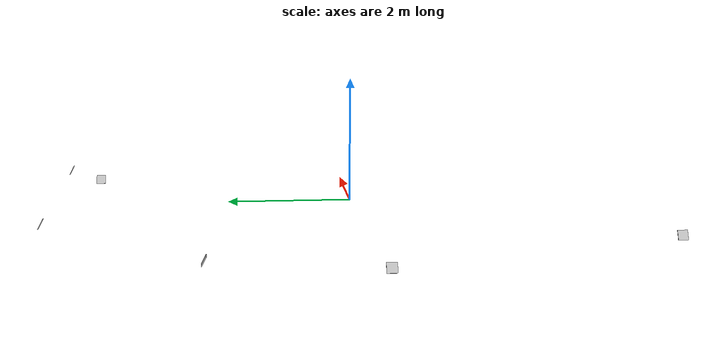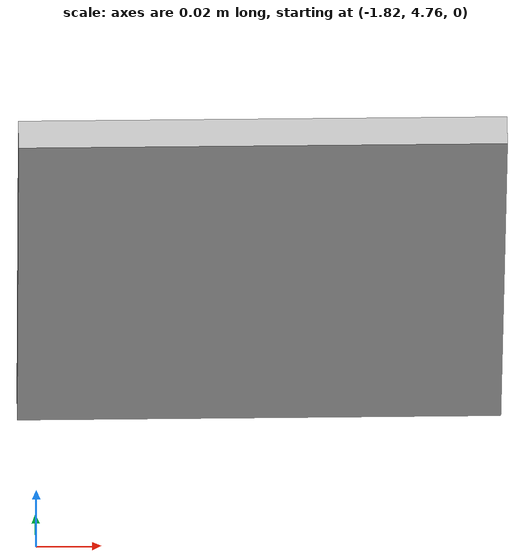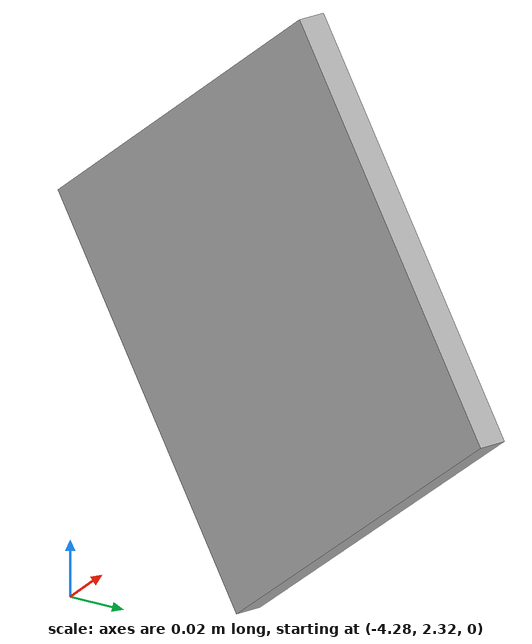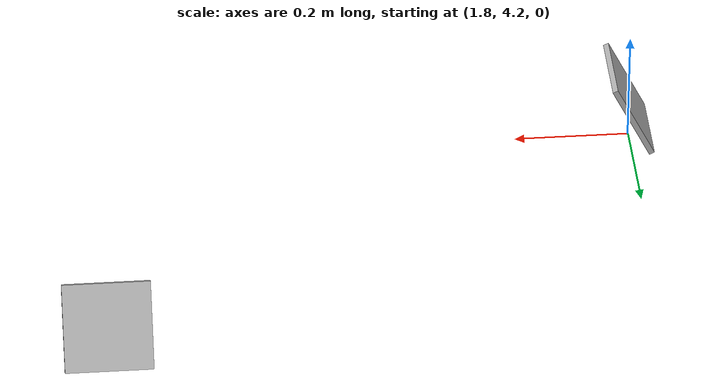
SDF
<?xml version='1.0'?>
<sdf version='1.6'>
  <model name='april_tag_dx'>
    <link name='tag1_dx'>
    <pose frame=''>-3.3 -4.5 0.075 0 90 0</pose>
      <visual name='tag1_dx_Visual'>
        <geometry>
          <box>
          <size>0.15 0.15 0.01</size>
          </box>
        </geometry>
           <material>
          <script>
            <uri>model://april_tag/Apriltag36_11_00001/materials/scripts</uri>
            <uri>model://april_tag/Apriltag36_11_00001/materials/textures</uri>
            <name>Apriltag36_11_00001</name>
          </script>
        </material>
      </visual>
     </link>
     <link name='tag2_dx'>
    <pose frame=''>-4.2 2.35 0.075 90 0 0</pose>
      <visual name='tag2_dx_Visual'>
        <geometry>
          <box>
          <size>0.15 0.15 0.01</size>
          </box>
        </geometry>
           <material>
          <script>
            <uri>model://april_tag/Apriltag36_11_00001/materials/scripts</uri>
            <uri>model://april_tag/Apriltag36_11_00001/materials/textures</uri>
            <name>Apriltag36_11_00001</name>
          </script>
        </material>
      </visual>
     </link>
     <link name='tag3_dx'>
    <pose frame=''>-1.75 4.8 0.075 90 0 0</pose>
      <visual name='tag3_dx_Visual'>
        <geometry>
          <box>
          <size>0.15 0.15 0.01</size>
          </box>
        </geometry>
           <material>
          <script>
            <uri>model://april_tag/Apriltag36_11_00001/materials/scripts</uri>
            <uri>model://april_tag/Apriltag36_11_00001/materials/textures</uri>
            <name>Apriltag36_11_00001</name>
          </script>
        </material>
      </visual>
     </link>
     <link name='tag4_dx'>
    <pose frame=''>1.8 4.2 0.075 0 90 0</pose>
      <visual name='tag4_dx_Visual'>
        <geometry>
          <box>
          <size>0.15 0.15 0.01</size>
          </box>
        </geometry>
           <material>
          <script>
            <uri>model://april_tag/Apriltag36_11_00001/materials/scripts</uri>
            <uri>model://april_tag/Apriltag36_11_00001/materials/textures</uri>
            <name>Apriltag36_11_00001</name>
          </script>
        </material>
      </visual>
     </link>
     <link name='tag5_dx'>
    <pose frame=''>2.75 4.8 0.075 90 0 0</pose>
      <visual name='tag5_dx_Visual'>
        <geometry>
          <box>
          <size>0.15 0.15 0.01</size>
          </box>
        </geometry>
           <material>
          <script>
            <uri>model://april_tag/Apriltag36_11_00001/materials/scripts</uri>
            <uri>model://april_tag/Apriltag36_11_00001/materials/textures</uri>
            <name>Apriltag36_11_00001</name>
          </script>
        </material>
      </visual>
     </link>
     <link name='tag6_dx'>
    <pose frame=''>-4.8 -0.1 0.075 0 90 0</pose>
      <visual name='tag6_dx_Visual'>
        <geometry>
          <box>
          <size>0.15 0.15 0.01</size>
          </box>
        </geometry>
           <material>
          <script>
            <uri>model://april_tag/Apriltag36_11_00001/materials/scripts</uri>
            <uri>model://april_tag/Apriltag36_11_00001/materials/textures</uri>
            <name>Apriltag36_11_00001</name>
          </script>
        </material>
      </visual>
     </link>
    <static>1</static>
  </model>
</sdf>
